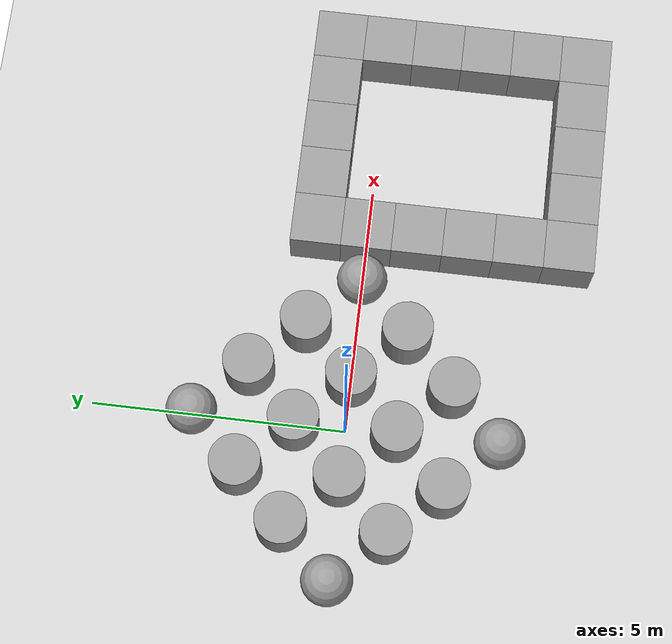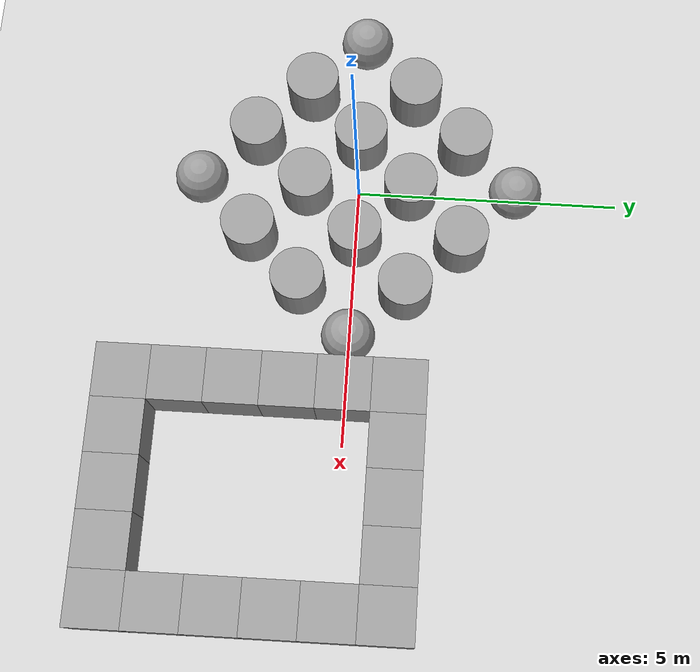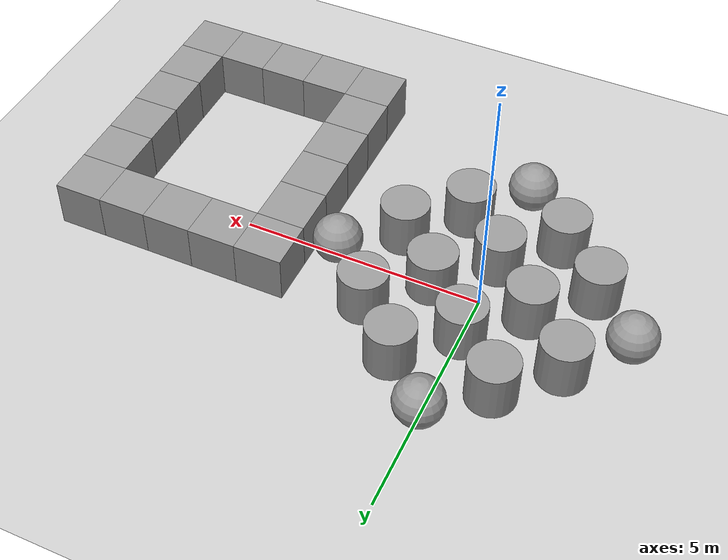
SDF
<sdf version="1.4">
 <world name="default">
  <light name="sun" type="directional">
   <pose>0 0 10 0 -0 0</pose>
   <diffuse>0.8 0.8 0.8 1</diffuse>
   <specular>0.2 0.2 0.2 1</specular>
   <attenuation>
    <range>1000</range>
    <constant>0.9</constant>
    <linear>0.01</linear>
    <quadratic>0.001</quadratic>
   </attenuation>
   <direction>-0.5 0.1 -0.9</direction>
  </light>
  <model name="ground_plane">
   <static>1</static>
   <link name="link">
    <collision name="collision">
     <geometry><plane><normal>0 0 1</normal><size>100 100</size></plane></geometry>
     <surface><friction><ode><mu>100</mu><mu2>50</mu2></ode></friction></surface>
    </collision>
    <visual name="visual">
     <cast_shadows>0</cast_shadows>
     <geometry><plane><normal>0 0 1</normal><size>100 100</size></plane></geometry>
     <material>
      <script><uri>file://media/materials/scripts/gazebo.material</uri><name>Gazebo/Grey</name></script>
     </material>
    </visual>
    <velocity_decay><linear>0</linear><angular>0</angular></velocity_decay>
   </link>
  </model>
  <physics type="ode">
   <max_step_size>0.001</max_step_size>
   <real_time_factor>1</real_time_factor>
   <real_time_update_rate>1000</real_time_update_rate>
   <gravity>0 0 -9.8</gravity>
  </physics>
  <scene><ambient>0.4 0.4 0.4 1</ambient><background>0.7 0.7 0.7 1</background><shadows>1</shadows></scene>
  <model name="unit_cylinder_1_0">
   <pose>0 -1 0.499992 0 -0 0</pose>
   <link name="link">
    <inertial>
     <mass>1</mass>
     <inertia><ixx>1</ixx><ixy>0</ixy><ixz>0</ixz><iyy>1</iyy><iyz>0</iyz><izz>1</izz></inertia>
    </inertial>
    <collision name="collision">
     <geometry><cylinder><radius>0.5</radius><length>1</length></cylinder></geometry>
    </collision>
    <visual name="visual">
     <geometry><cylinder><radius>0.5</radius><length>1</length></cylinder></geometry>
     <material>
      <script><uri>file://media/materials/scripts/gazebo.material</uri><name>Gazebo/Grey</name></script>
     </material>
    </visual>
    <velocity_decay><linear>0</linear><angular>0</angular></velocity_decay>
   </link>
   <static>0</static>
  </model>
  <model name="unit_cylinder_2">
   <pose>1 -0 0.499998 0 -0 0</pose>
   <link name="link">
    <inertial>
     <mass>1</mass>
     <inertia><ixx>1</ixx><ixy>0</ixy><ixz>0</ixz><iyy>1</iyy><iyz>0</iyz><izz>1</izz></inertia>
    </inertial>
    <collision name="collision">
     <geometry><cylinder><radius>0.5</radius><length>1</length></cylinder></geometry>
    </collision>
    <visual name="visual">
     <geometry><cylinder><radius>0.5</radius><length>1</length></cylinder></geometry>
     <material>
      <script><uri>file://media/materials/scripts/gazebo.material</uri><name>Gazebo/Grey</name></script>
     </material>
    </visual>
    <velocity_decay><linear>0</linear><angular>0</angular></velocity_decay>
   </link>
   <static>0</static>
  </model>
  <model name="unit_cylinder_3">
   <pose>0 1 0.499992 0 -0 0</pose>
   <link name="link">
    <inertial>
     <mass>1</mass>
     <inertia><ixx>1</ixx><ixy>0</ixy><ixz>0</ixz><iyy>1</iyy><iyz>0</iyz><izz>1</izz></inertia>
    </inertial>
    <collision name="collision">
     <geometry><cylinder><radius>0.5</radius><length>1</length></cylinder></geometry>
    </collision>
    <visual name="visual">
     <geometry><cylinder><radius>0.5</radius><length>1</length></cylinder></geometry>
     <material>
      <script><uri>file://media/materials/scripts/gazebo.material</uri><name>Gazebo/Grey</name></script>
     </material>
    </visual>
    <velocity_decay><linear>0</linear><angular>0</angular></velocity_decay>
   </link>
   <static>0</static>
  </model>
  <model name="unit_cylinder_4">
   <pose>-1 -0 0.499998 0 -0 0</pose>
   <link name="link">
    <inertial>
     <mass>1</mass>
     <inertia><ixx>1</ixx><ixy>0</ixy><ixz>0</ixz><iyy>1</iyy><iyz>0</iyz><izz>1</izz></inertia>
    </inertial>
    <collision name="collision">
     <geometry><cylinder><radius>0.5</radius><length>1</length></cylinder></geometry>
    </collision>
    <visual name="visual">
     <geometry><cylinder><radius>0.5</radius><length>1</length></cylinder></geometry>
     <material>
      <script><uri>file://media/materials/scripts/gazebo.material</uri><name>Gazebo/Grey</name></script>
     </material>
    </visual>
    <velocity_decay><linear>0</linear><angular>0</angular></velocity_decay>
   </link>
   <static>0</static>
  </model>
  <model name="unit_cylinder_5">
   <pose>-2 -1 0.499992 0 -0 0</pose>
   <link name="link">
    <inertial>
     <mass>1</mass>
     <inertia><ixx>1</ixx><ixy>0</ixy><ixz>0</ixz><iyy>1</iyy><iyz>0</iyz><izz>1</izz></inertia>
    </inertial>
    <collision name="collision">
     <geometry><cylinder><radius>0.5</radius><length>1</length></cylinder></geometry>
    </collision>
    <visual name="visual">
     <geometry><cylinder><radius>0.5</radius><length>1</length></cylinder></geometry>
     <material>
      <script><uri>file://media/materials/scripts/gazebo.material</uri><name>Gazebo/Grey</name></script>
     </material>
    </visual>
    <velocity_decay><linear>0</linear><angular>0</angular></velocity_decay>
   </link>
   <static>0</static>
  </model>
  <model name="unit_cylinder_6">
   <pose>-1 2 0.499998 0 -0 0</pose>
   <link name="link">
    <inertial>
     <mass>1</mass>
     <inertia><ixx>1</ixx><ixy>0</ixy><ixz>0</ixz><iyy>1</iyy><iyz>0</iyz><izz>1</izz></inertia>
    </inertial>
    <collision name="collision">
     <geometry><cylinder><radius>0.5</radius><length>1</length></cylinder></geometry>
    </collision>
    <visual name="visual">
     <geometry><cylinder><radius>0.5</radius><length>1</length></cylinder></geometry>
     <material>
      <script><uri>file://media/materials/scripts/gazebo.material</uri><name>Gazebo/Grey</name></script>
     </material>
    </visual>
    <velocity_decay><linear>0</linear><angular>0</angular></velocity_decay>
   </link>
   <static>0</static>
  </model>
  <model name="unit_cylinder_7">
   <pose>2 1 0.499992 0 -0 0</pose>
   <link name="link">
    <inertial>
     <mass>1</mass>
     <inertia><ixx>1</ixx><ixy>0</ixy><ixz>0</ixz><iyy>1</iyy><iyz>0</iyz><izz>1</izz></inertia>
    </inertial>
    <collision name="collision">
     <geometry><cylinder><radius>0.5</radius><length>1</length></cylinder></geometry>
    </collision>
    <visual name="visual">
     <geometry><cylinder><radius>0.5</radius><length>1</length></cylinder></geometry>
     <material>
      <script><uri>file://media/materials/scripts/gazebo.material</uri><name>Gazebo/Grey</name></script>
     </material>
    </visual>
    <velocity_decay><linear>0</linear><angular>0</angular></velocity_decay>
   </link>
   <static>0</static>
  </model>
  <model name="unit_cylinder_8">
   <pose>1 -2 0.499998 0 -0 0</pose>
   <link name="link">
    <inertial>
     <mass>1</mass>
     <inertia><ixx>1</ixx><ixy>0</ixy><ixz>0</ixz><iyy>1</iyy><iyz>0</iyz><izz>1</izz></inertia>
    </inertial>
    <collision name="collision">
     <geometry><cylinder><radius>0.5</radius><length>1</length></cylinder></geometry>
    </collision>
    <visual name="visual">
     <geometry><cylinder><radius>0.5</radius><length>1</length></cylinder></geometry>
     <material>
      <script><uri>file://media/materials/scripts/gazebo.material</uri><name>Gazebo/Grey</name></script>
     </material>
    </visual>
    <velocity_decay><linear>0</linear><angular>0</angular></velocity_decay>
   </link>
   <static>0</static>
  </model>
  <model name="unit_cylinder_9">
   <pose>-1 -2 0.499992 0 -0 0</pose>
   <link name="link">
    <inertial>
     <mass>1</mass>
     <inertia><ixx>1</ixx><ixy>0</ixy><ixz>0</ixz><iyy>1</iyy><iyz>0</iyz><izz>1</izz></inertia>
    </inertial>
    <collision name="collision">
     <geometry><cylinder><radius>0.5</radius><length>1</length></cylinder></geometry>
    </collision>
    <visual name="visual">
     <geometry><cylinder><radius>0.5</radius><length>1</length></cylinder></geometry>
     <material>
      <script><uri>file://media/materials/scripts/gazebo.material</uri><name>Gazebo/Grey</name></script>
     </material>
    </visual>
    <velocity_decay><linear>0</linear><angular>0</angular></velocity_decay>
   </link>
   <static>0</static>
  </model>
  <model name="unit_cylinder_10">
   <pose>1 2 0.499998 0 -0 0</pose>
   <link name="link">
    <inertial>
     <mass>1</mass>
     <inertia><ixx>1</ixx><ixy>0</ixy><ixz>0</ixz><iyy>1</iyy><iyz>0</iyz><izz>1</izz></inertia>
    </inertial>
    <collision name="collision">
     <geometry><cylinder><radius>0.5</radius><length>1</length></cylinder></geometry>
    </collision>
    <visual name="visual">
     <geometry><cylinder><radius>0.5</radius><length>1</length></cylinder></geometry>
     <material>
      <script><uri>file://media/materials/scripts/gazebo.material</uri><name>Gazebo/Grey</name></script>
     </material>
    </visual>
    <velocity_decay><linear>0</linear><angular>0</angular></velocity_decay>
   </link>
   <static>0</static>
  </model>
  <model name="unit_cylinder_11">
   <pose>2 -1 0.499992 0 -0 0</pose>
   <link name="link">
    <inertial>
     <mass>1</mass>
     <inertia><ixx>1</ixx><ixy>0</ixy><ixz>0</ixz><iyy>1</iyy><iyz>0</iyz><izz>1</izz></inertia>
    </inertial>
    <collision name="collision">
     <geometry><cylinder><radius>0.5</radius><length>1</length></cylinder></geometry>
    </collision>
    <visual name="visual">
     <geometry><cylinder><radius>0.5</radius><length>1</length></cylinder></geometry>
     <material>
      <script><uri>file://media/materials/scripts/gazebo.material</uri><name>Gazebo/Grey</name></script>
     </material>
    </visual>
    <velocity_decay><linear>0</linear><angular>0</angular></velocity_decay>
   </link>
   <static>0</static>
  </model>
  <model name="unit_cylinder_12">
   <pose>-2 1 0.499998 0 -0 0</pose>
   <link name="link">
    <inertial>
     <mass>1</mass>
     <inertia><ixx>1</ixx><ixy>0</ixy><ixz>0</ixz><iyy>1</iyy><iyz>0</iyz><izz>1</izz></inertia>
    </inertial>
    <collision name="collision">
     <geometry><cylinder><radius>0.5</radius><length>1</length></cylinder></geometry>
    </collision>
    <visual name="visual">
     <geometry><cylinder><radius>0.5</radius><length>1</length></cylinder></geometry>
     <material>
      <script><uri>file://media/materials/scripts/gazebo.material</uri><name>Gazebo/Grey</name></script>
     </material>
    </visual>
    <velocity_decay><linear>0</linear><angular>0</angular></velocity_decay>
   </link>
   <static>0</static>
  </model>
  <model name="unit_sphere_1">
   <pose>0 -3 0.5 0 -0 0</pose>
   <link name="link">
    <inertial>
     <mass>1</mass>
     <inertia><ixx>1</ixx><ixy>0</ixy><ixz>0</ixz><iyy>1</iyy><iyz>0</iyz><izz>1</izz></inertia>
    </inertial>
    <collision name="collision"><geometry><sphere><radius>0.5</radius></sphere></geometry></collision>
    <visual name="visual">
     <geometry><sphere><radius>0.5</radius></sphere></geometry>
     <material>
      <script><uri>file://media/materials/scripts/gazebo.material</uri><name>Gazebo/Grey</name></script>
     </material>
    </visual>
    <velocity_decay><linear>0</linear><angular>0</angular></velocity_decay>
   </link>
   <static>0</static>
  </model>
  <model name="unit_sphere_2">
   <pose>2.99997 -3.9e-05 0.5 7.8e-05 -6.1e-05 -9.8e-05</pose>
   <link name="link">
    <inertial>
     <mass>1</mass>
     <inertia><ixx>1</ixx><ixy>0</ixy><ixz>0</ixz><iyy>1</iyy><iyz>0</iyz><izz>1</izz></inertia>
    </inertial>
    <collision name="collision"><geometry><sphere><radius>0.5</radius></sphere></geometry></collision>
    <visual name="visual">
     <geometry><sphere><radius>0.5</radius></sphere></geometry>
     <material>
      <script><uri>file://media/materials/scripts/gazebo.material</uri><name>Gazebo/Grey</name></script>
     </material>
    </visual>
    <velocity_decay><linear>0</linear><angular>0</angular></velocity_decay>
   </link>
   <static>0</static>
  </model>
  <model name="unit_sphere_3">
   <pose>0 3 0.5 0 -0 0</pose>
   <link name="link">
    <inertial>
     <mass>1</mass>
     <inertia><ixx>1</ixx><ixy>0</ixy><ixz>0</ixz><iyy>1</iyy><iyz>0</iyz><izz>1</izz></inertia>
    </inertial>
    <collision name="collision"><geometry><sphere><radius>0.5</radius></sphere></geometry></collision>
    <visual name="visual">
     <geometry><sphere><radius>0.5</radius></sphere></geometry>
     <material>
      <script><uri>file://media/materials/scripts/gazebo.material</uri><name>Gazebo/Grey</name></script>
     </material>
    </visual>
    <velocity_decay><linear>0</linear><angular>0</angular></velocity_decay>
   </link>
   <static>0</static>
  </model>
  <model name="unit_sphere_4">
   <pose>-3 0 0.5 0 -0 0</pose>
   <link name="link">
    <inertial>
     <mass>1</mass>
     <inertia><ixx>1</ixx><ixy>0</ixy><ixz>0</ixz><iyy>1</iyy><iyz>0</iyz><izz>1</izz></inertia>
    </inertial>
    <collision name="collision"><geometry><sphere><radius>0.5</radius></sphere></geometry></collision>
    <visual name="visual">
     <geometry><sphere><radius>0.5</radius></sphere></geometry>
     <material>
      <script><uri>file://media/materials/scripts/gazebo.material</uri><name>Gazebo/Grey</name></script>
     </material>
    </visual>
    <velocity_decay><linear>0</linear><angular>0</angular></velocity_decay>
   </link>
   <static>0</static>
  </model>
  <model name="unit_box_1">
   <pose>8 -1 0.499996 -3e-06 4e-06 -2e-06</pose>
   <link name="link">
    <inertial>
     <mass>1</mass>
     <inertia><ixx>1</ixx><ixy>0</ixy><ixz>0</ixz><iyy>1</iyy><iyz>0</iyz><izz>1</izz></inertia>
    </inertial>
    <collision name="collision"><geometry><box><size>1 1 1</size></box></geometry></collision>
    <visual name="visual">
     <geometry><box><size>1 1 1</size></box></geometry>
     <material>
      <script><uri>file://media/materials/scripts/gazebo.material</uri><name>Gazebo/Grey</name></script>
     </material>
    </visual>
    <velocity_decay><linear>0</linear><angular>0</angular></velocity_decay>
   </link>
   <static>0</static>
  </model>
  <model name="unit_box_2">
   <pose>8 -2.00001 0.5 0 0 -2e-06</pose>
   <link name="link">
    <inertial>
     <mass>1</mass>
     <inertia><ixx>1</ixx><ixy>0</ixy><ixz>0</ixz><iyy>1</iyy><iyz>0</iyz><izz>1</izz></inertia>
    </inertial>
    <collision name="collision"><geometry><box><size>1 1 1</size></box></geometry></collision>
    <visual name="visual">
     <geometry><box><size>1 1 1</size></box></geometry>
     <material>
      <script><uri>file://media/materials/scripts/gazebo.material</uri><name>Gazebo/Grey</name></script>
     </material>
    </visual>
    <velocity_decay><linear>0</linear><angular>0</angular></velocity_decay>
   </link>
   <static>0</static>
  </model>
  <model name="unit_box_3">
   <pose>7.99999 -3e-06 0.5 0 0 -3e-06</pose>
   <link name="link">
    <inertial>
     <mass>1</mass>
     <inertia><ixx>1</ixx><ixy>0</ixy><ixz>0</ixz><iyy>1</iyy><iyz>0</iyz><izz>1</izz></inertia>
    </inertial>
    <collision name="collision"><geometry><box><size>1 1 1</size></box></geometry></collision>
    <visual name="visual">
     <geometry><box><size>1 1 1</size></box></geometry>
     <material>
      <script><uri>file://media/materials/scripts/gazebo.material</uri><name>Gazebo/Grey</name></script>
     </material>
    </visual>
    <velocity_decay><linear>0</linear><angular>0</angular></velocity_decay>
   </link>
   <static>0</static>
  </model>
  <model name="unit_box_4">
   <pose>8 1 0.5 0 0 -2e-06</pose>
   <link name="link">
    <inertial>
     <mass>1</mass>
     <inertia><ixx>1</ixx><ixy>0</ixy><ixz>0</ixz><iyy>1</iyy><iyz>0</iyz><izz>1</izz></inertia>
    </inertial>
    <collision name="collision"><geometry><box><size>1 1 1</size></box></geometry></collision>
    <visual name="visual">
     <geometry><box><size>1 1 1</size></box></geometry>
     <material>
      <script><uri>file://media/materials/scripts/gazebo.material</uri><name>Gazebo/Grey</name></script>
     </material>
    </visual>
    <velocity_decay><linear>0</linear><angular>0</angular></velocity_decay>
   </link>
   <static>0</static>
  </model>
  <model name="unit_box_5">
   <pose>8 -3.00001 0.5 0 -0 -1e-06</pose>
   <link name="link">
    <inertial>
     <mass>1</mass>
     <inertia><ixx>1</ixx><ixy>0</ixy><ixz>0</ixz><iyy>1</iyy><iyz>0</iyz><izz>1</izz></inertia>
    </inertial>
    <collision name="collision"><geometry><box><size>1 1 1</size></box></geometry></collision>
    <visual name="visual">
     <geometry><box><size>1 1 1</size></box></geometry>
     <material>
      <script><uri>file://media/materials/scripts/gazebo.material</uri><name>Gazebo/Grey</name></script>
     </material>
    </visual>
    <velocity_decay><linear>0</linear><angular>0</angular></velocity_decay>
   </link>
   <static>0</static>
  </model>
  <model name="unit_box_6">
   <pose>8 -4.00002 0.5 0 -0 -1e-06</pose>
   <link name="link">
    <inertial>
     <mass>1</mass>
     <inertia><ixx>1</ixx><ixy>0</ixy><ixz>0</ixz><iyy>1</iyy><iyz>0</iyz><izz>1</izz></inertia>
    </inertial>
    <collision name="collision"><geometry><box><size>1 1 1</size></box></geometry></collision>
    <visual name="visual">
     <geometry><box><size>1 1 1</size></box></geometry>
     <material>
      <script><uri>file://media/materials/scripts/gazebo.material</uri><name>Gazebo/Grey</name></script>
     </material>
    </visual>
    <velocity_decay><linear>0</linear><angular>0</angular></velocity_decay>
   </link>
   <static>0</static>
  </model>
  <model name="unit_box_7">
   <pose>7 1 0.5 0 -0 -2e-06</pose>
   <link name="link">
    <inertial>
     <mass>1</mass>
     <inertia><ixx>1</ixx><ixy>0</ixy><ixz>0</ixz><iyy>1</iyy><iyz>0</iyz><izz>1</izz></inertia>
    </inertial>
    <collision name="collision"><geometry><box><size>1 1 1</size></box></geometry></collision>
    <visual name="visual">
     <geometry><box><size>1 1 1</size></box></geometry>
     <material>
      <script><uri>file://media/materials/scripts/gazebo.material</uri><name>Gazebo/Grey</name></script>
     </material>
    </visual>
    <velocity_decay><linear>0</linear><angular>0</angular></velocity_decay>
   </link>
   <static>0</static>
  </model>
  <model name="unit_box_8">
   <pose>6 0.999998 0.5 0 0 -3e-06</pose>
   <link name="link">
    <inertial>
     <mass>1</mass>
     <inertia><ixx>1</ixx><ixy>0</ixy><ixz>0</ixz><iyy>1</iyy><iyz>0</iyz><izz>1</izz></inertia>
    </inertial>
    <collision name="collision"><geometry><box><size>1 1 1</size></box></geometry></collision>
    <visual name="visual">
     <geometry><box><size>1 1 1</size></box></geometry>
     <material>
      <script><uri>file://media/materials/scripts/gazebo.material</uri><name>Gazebo/Grey</name></script>
     </material>
    </visual>
    <velocity_decay><linear>0</linear><angular>0</angular></velocity_decay>
   </link>
   <static>0</static>
  </model>
  <model name="unit_box_9">
   <pose>5 0.999999 0.5 0 0 -4e-06</pose>
   <link name="link">
    <inertial>
     <mass>1</mass>
     <inertia><ixx>1</ixx><ixy>0</ixy><ixz>0</ixz><iyy>1</iyy><iyz>0</iyz><izz>1</izz></inertia>
    </inertial>
    <collision name="collision"><geometry><box><size>1 1 1</size></box></geometry></collision>
    <visual name="visual">
     <geometry><box><size>1 1 1</size></box></geometry>
     <material>
      <script><uri>file://media/materials/scripts/gazebo.material</uri><name>Gazebo/Grey</name></script>
     </material>
    </visual>
    <velocity_decay><linear>0</linear><angular>0</angular></velocity_decay>
   </link>
   <static>0</static>
  </model>
  <model name="unit_box_10">
   <pose>4 1 0.5 0 0 -1e-06</pose>
   <link name="link">
    <inertial>
     <mass>1</mass>
     <inertia><ixx>1</ixx><ixy>0</ixy><ixz>0</ixz><iyy>1</iyy><iyz>0</iyz><izz>1</izz></inertia>
    </inertial>
    <collision name="collision"><geometry><box><size>1 1 1</size></box></geometry></collision>
    <visual name="visual">
     <geometry><box><size>1 1 1</size></box></geometry>
     <material>
      <script><uri>file://media/materials/scripts/gazebo.material</uri><name>Gazebo/Grey</name></script>
     </material>
    </visual>
    <velocity_decay><linear>0</linear><angular>0</angular></velocity_decay>
   </link>
   <static>0</static>
  </model>
  <model name="unit_box_11">
   <pose>7 -4 0.5 -0 -0 -1e-06</pose>
   <link name="link">
    <inertial>
     <mass>1</mass>
     <inertia><ixx>1</ixx><ixy>0</ixy><ixz>0</ixz><iyy>1</iyy><iyz>0</iyz><izz>1</izz></inertia>
    </inertial>
    <collision name="collision"><geometry><box><size>1 1 1</size></box></geometry></collision>
    <visual name="visual">
     <geometry><box><size>1 1 1</size></box></geometry>
     <material>
      <script><uri>file://media/materials/scripts/gazebo.material</uri><name>Gazebo/Grey</name></script>
     </material>
    </visual>
    <velocity_decay><linear>0</linear><angular>0</angular></velocity_decay>
   </link>
   <static>0</static>
  </model>
  <model name="unit_box_12">
   <pose>6 -4 0.5 -0 -0 -1e-06</pose>
   <link name="link">
    <inertial>
     <mass>1</mass>
     <inertia><ixx>1</ixx><ixy>0</ixy><ixz>0</ixz><iyy>1</iyy><iyz>0</iyz><izz>1</izz></inertia>
    </inertial>
    <collision name="collision"><geometry><box><size>1 1 1</size></box></geometry></collision>
    <visual name="visual">
     <geometry><box><size>1 1 1</size></box></geometry>
     <material>
      <script><uri>file://media/materials/scripts/gazebo.material</uri><name>Gazebo/Grey</name></script>
     </material>
    </visual>
    <velocity_decay><linear>0</linear><angular>0</angular></velocity_decay>
   </link>
   <static>0</static>
  </model>
  <model name="unit_box_13">
   <pose>5 -4 0.5 0 -0 -1e-06</pose>
   <link name="link">
    <inertial>
     <mass>1</mass>
     <inertia><ixx>1</ixx><ixy>0</ixy><ixz>0</ixz><iyy>1</iyy><iyz>0</iyz><izz>1</izz></inertia>
    </inertial>
    <collision name="collision"><geometry><box><size>1 1 1</size></box></geometry></collision>
    <visual name="visual">
     <geometry><box><size>1 1 1</size></box></geometry>
     <material>
      <script><uri>file://media/materials/scripts/gazebo.material</uri><name>Gazebo/Grey</name></script>
     </material>
    </visual>
    <velocity_decay><linear>0</linear><angular>0</angular></velocity_decay>
   </link>
   <static>0</static>
  </model>
  <model name="unit_box_14">
   <pose>4 -4 0.5 0 -0 -1e-06</pose>
   <link name="link">
    <inertial>
     <mass>1</mass>
     <inertia><ixx>1</ixx><ixy>0</ixy><ixz>0</ixz><iyy>1</iyy><iyz>0</iyz><izz>1</izz></inertia>
    </inertial>
    <collision name="collision"><geometry><box><size>1 1 1</size></box></geometry></collision>
    <visual name="visual">
     <geometry><box><size>1 1 1</size></box></geometry>
     <material>
      <script><uri>file://media/materials/scripts/gazebo.material</uri><name>Gazebo/Grey</name></script>
     </material>
    </visual>
    <velocity_decay><linear>0</linear><angular>0</angular></velocity_decay>
   </link>
   <static>0</static>
  </model>
  <model name="unit_box_15">
   <pose>4 -3 0.5 0 0 -2e-06</pose>
   <link name="link">
    <inertial>
     <mass>1</mass>
     <inertia><ixx>1</ixx><ixy>0</ixy><ixz>0</ixz><iyy>1</iyy><iyz>0</iyz><izz>1</izz></inertia>
    </inertial>
    <collision name="collision"><geometry><box><size>1 1 1</size></box></geometry></collision>
    <visual name="visual">
     <geometry><box><size>1 1 1</size></box></geometry>
     <material>
      <script><uri>file://media/materials/scripts/gazebo.material</uri><name>Gazebo/Grey</name></script>
     </material>
    </visual>
    <velocity_decay><linear>0</linear><angular>0</angular></velocity_decay>
   </link>
   <static>0</static>
  </model>
  <model name="unit_box_16">
   <pose>4 0 0.5 0 0 -1e-06</pose>
   <link name="link">
    <inertial>
     <mass>1</mass>
     <inertia><ixx>1</ixx><ixy>0</ixy><ixz>0</ixz><iyy>1</iyy><iyz>0</iyz><izz>1</izz></inertia>
    </inertial>
    <collision name="collision"><geometry><box><size>1 1 1</size></box></geometry></collision>
    <visual name="visual">
     <geometry><box><size>1 1 1</size></box></geometry>
     <material>
      <script><uri>file://media/materials/scripts/gazebo.material</uri><name>Gazebo/Grey</name></script>
     </material>
    </visual>
    <velocity_decay><linear>0</linear><angular>0</angular></velocity_decay>
   </link>
   <static>0</static>
  </model>
  <model name="unit_box_17">
   <pose>4 -1 0.5 0 -0 -1e-06</pose>
   <link name="link">
    <inertial>
     <mass>1</mass>
     <inertia><ixx>1</ixx><ixy>0</ixy><ixz>0</ixz><iyy>1</iyy><iyz>0</iyz><izz>1</izz></inertia>
    </inertial>
    <collision name="collision"><geometry><box><size>1 1 1</size></box></geometry></collision>
    <visual name="visual">
     <geometry><box><size>1 1 1</size></box></geometry>
     <material>
      <script><uri>file://media/materials/scripts/gazebo.material</uri><name>Gazebo/Grey</name></script>
     </material>
    </visual>
    <velocity_decay><linear>0</linear><angular>0</angular></velocity_decay>
   </link>
   <static>0</static>
  </model>
  <model name="unit_box_18">
   <pose>4 -2 0.5 0 0 -2e-06</pose>
   <link name="link">
    <inertial>
     <mass>1</mass>
     <inertia><ixx>1</ixx><ixy>0</ixy><ixz>0</ixz><iyy>1</iyy><iyz>0</iyz><izz>1</izz></inertia>
    </inertial>
    <collision name="collision"><geometry><box><size>1 1 1</size></box></geometry></collision>
    <visual name="visual">
     <geometry><box><size>1 1 1</size></box></geometry>
     <material>
      <script><uri>file://media/materials/scripts/gazebo.material</uri><name>Gazebo/Grey</name></script>
     </material>
    </visual>
    <velocity_decay><linear>0</linear><angular>0</angular></velocity_decay>
   </link>
   <static>0</static>
  </model>
 </world>
</sdf>
